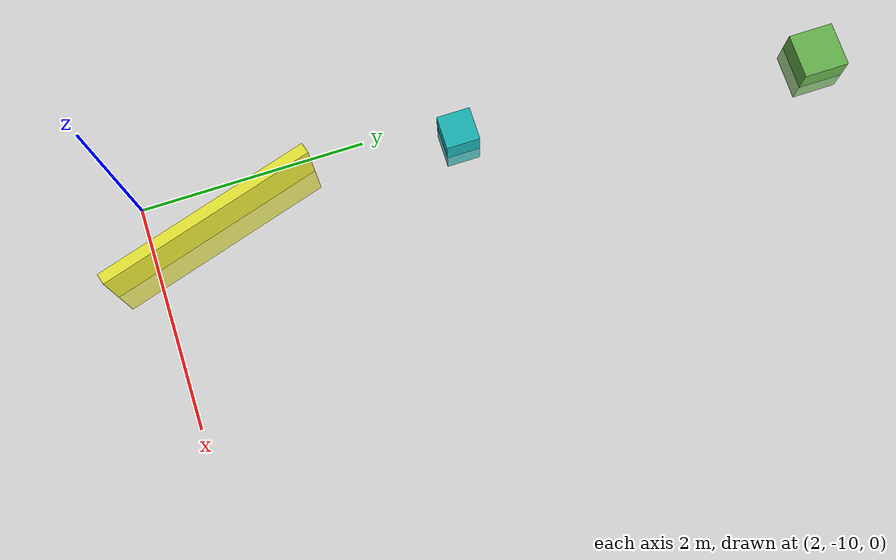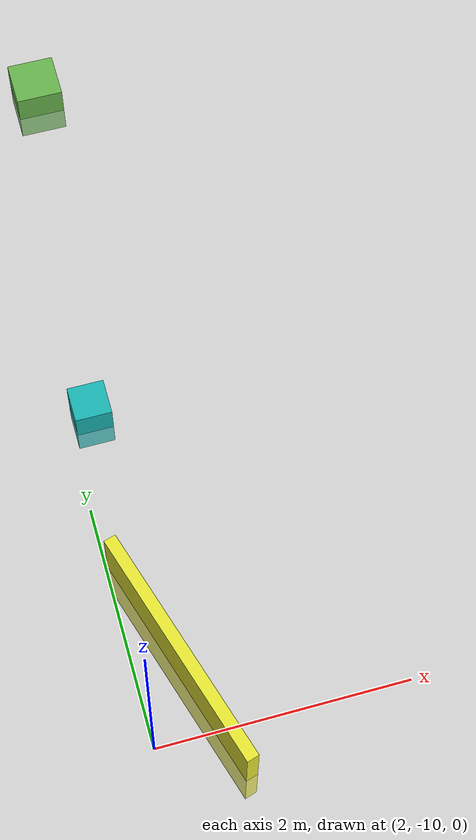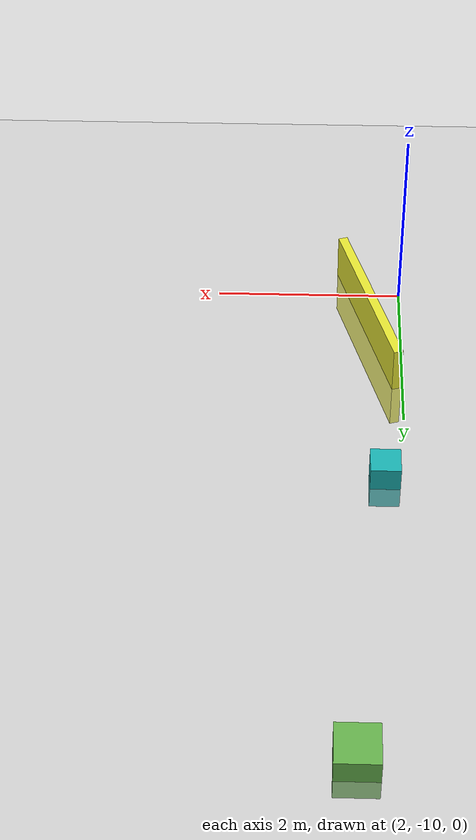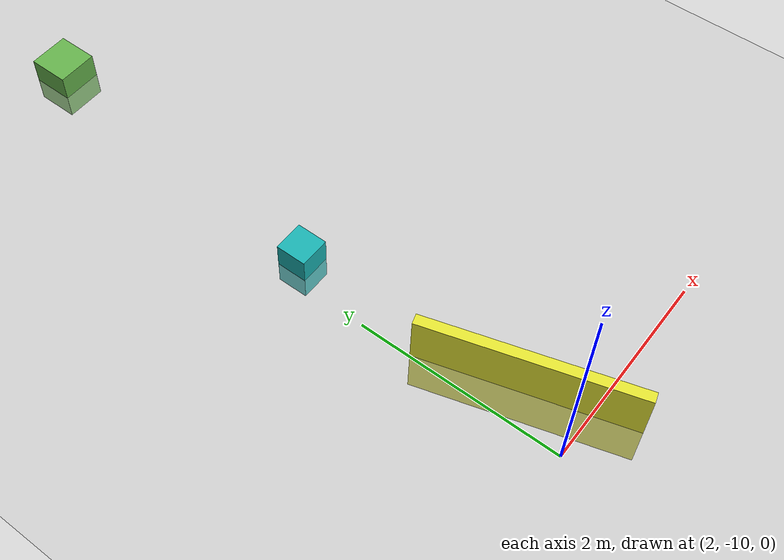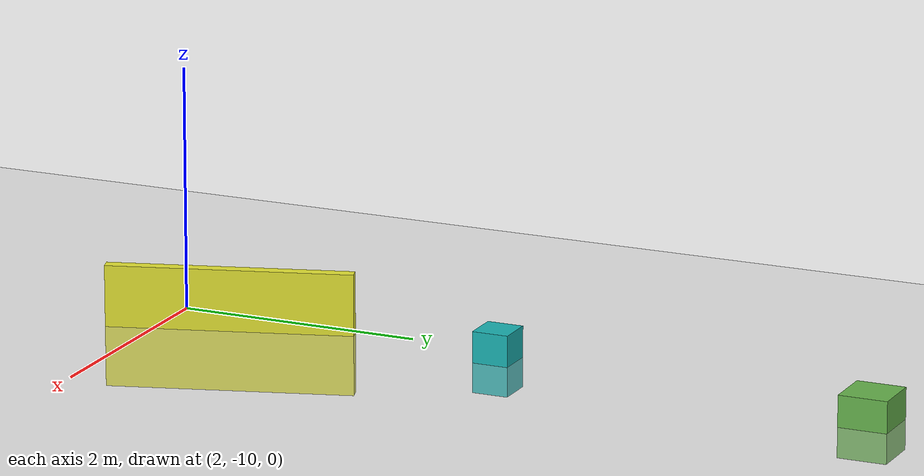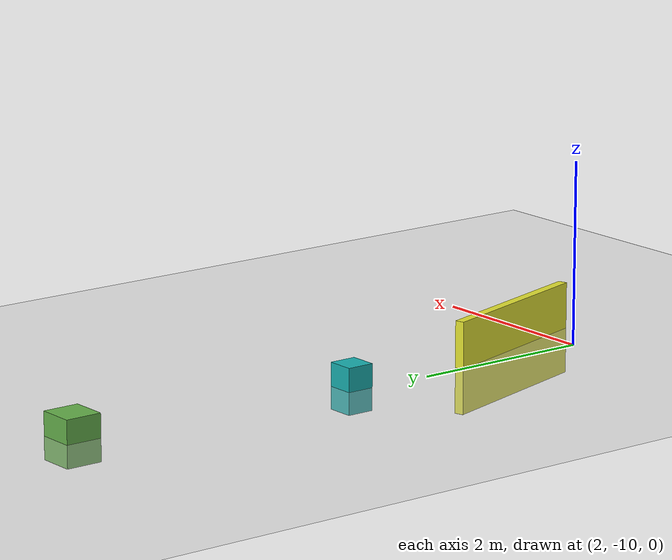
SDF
<sdf version="1.7">
 <world name="default">
  <model name="ground_plane">
   <static>1</static>
   <link name="link">
    <collision name="collision">
     <geometry><plane><normal>0 0 1</normal><size>100 100</size></plane></geometry>
     <surface><friction><ode><mu>100</mu><mu2>50</mu2></ode></friction></surface>
    </collision>
    <visual name="visual">
     <cast_shadows>0</cast_shadows>
     <geometry><plane><normal>0 0 1</normal><size>100 100</size></plane></geometry>
     <material>
      <script><uri>file://media/materials/scripts/gazebo.material</uri><name>Gazebo/Grey</name></script>
     </material>
    </visual>
   </link>
  </model>
  <model name="unit_box_0.3_heavy_clone_10">
   <link name="link">
    <inertial>
     <mass>100</mass>
     <inertia><ixx>1.5</ixx><ixy>0</ixy><ixz>0</ixz><iyy>1.5</iyy><iyz>0</iyz><izz>1.5</izz></inertia>
    </inertial>
    <visual name="visual">
     <geometry><box><size>0.3 0.3 0.5</size></box></geometry>
     <material>
      <script><name>Gazebo/Grey</name><uri>file://media/materials/scripts/gazebo.material</uri></script>
      <shader type="pixel"><normal_map>__default__</normal_map></shader>
      <ambient>0.1 0.7 0.7 1</ambient>
      <diffuse>0.7 0.7 0.7 1</diffuse>
      <specular>0.01 0.01 0.01 1</specular>
      <emissive>0 0 0 1</emissive>
     </material>
    </visual>
    <collision name="collision">
     <geometry><box><size>0.3 0.3 0.5</size></box></geometry>
     <surface>
      <friction>
       <ode><mu>1</mu><mu2>1</mu2><fdir1>0 0 0</fdir1><slip1>0</slip1><slip2>0</slip2></ode>
       <torsional>
        <coefficient>1</coefficient>
        <patch_radius>0</patch_radius>
        <surface_radius>0</surface_radius>
        <use_patch_radius>1</use_patch_radius>
        <ode><slip>0</slip></ode>
       </torsional>
      </friction>
      <bounce><restitution_coefficient>0</restitution_coefficient><threshold>1e+06</threshold></bounce>
      <contact>
       <collide_without_contact>0</collide_without_contact>
       <collide_without_contact_bitmask>1</collide_without_contact_bitmask>
       <collide_bitmask>1</collide_bitmask>
       <ode>
        <soft_cfm>0</soft_cfm>
        <soft_erp>0.2</soft_erp>
        <kp>1e+13</kp>
        <kd>1</kd>
        <max_vel>0.01</max_vel>
        <min_depth>0</min_depth>
       </ode>
       <bullet>
        <split_impulse>1</split_impulse>
        <split_impulse_penetration_threshold>-0.01</split_impulse_penetration_threshold>
        <soft_cfm>0</soft_cfm>
        <soft_erp>0.2</soft_erp>
        <kp>1e+13</kp>
        <kd>1</kd>
       </bullet>
      </contact>
     </surface>
    </collision>
   </link>
   <static>1</static>
   <pose>2.20551 -7.17477 0 0 -0 0</pose>
  </model>
  <model name="wooden_wall_2_heavy_clone">
   <link name="link_1">
    <inertial>
     <mass>100</mass>
     <inertia><ixx>8.41667</ixx><ixy>0</ixy><ixz>0</ixz><iyy>41.6667</iyy><iyz>0</iyz><izz>33.4167</izz></inertia>
    </inertial>
    <visual name="visual">
     <geometry><box><size>2 0.1 1</size></box></geometry>
     <material>
      <lighting>1</lighting>
      <script><uri>file://media/materials/scripts/gazebo.material</uri><name>Gazebo/Grey</name></script>
      <shader type="pixel"><normal_map>__default__</normal_map></shader>
      <ambient>0.9 0.9 0.2 1</ambient>
      <diffuse>0.7 0.7 0.7 1</diffuse>
      <specular>0.01 0.01 0.01 1</specular>
      <emissive>0 0 0 1</emissive>
     </material>
    </visual>
    <collision name="collision">
     <geometry><box><size>2 0.1 1</size></box></geometry>
     <surface>
      <friction>
       <ode><mu>1</mu><mu2>1</mu2><fdir1>0 0 0</fdir1><slip1>0</slip1><slip2>0</slip2></ode>
       <torsional>
        <coefficient>1</coefficient>
        <patch_radius>0</patch_radius>
        <surface_radius>0</surface_radius>
        <use_patch_radius>1</use_patch_radius>
        <ode><slip>0</slip></ode>
       </torsional>
      </friction>
      <bounce><restitution_coefficient>0</restitution_coefficient><threshold>1e+06</threshold></bounce>
      <contact>
       <collide_without_contact>0</collide_without_contact>
       <collide_without_contact_bitmask>1</collide_without_contact_bitmask>
       <collide_bitmask>1</collide_bitmask>
       <ode>
        <soft_cfm>0</soft_cfm>
        <soft_erp>0.2</soft_erp>
        <kp>1e+13</kp>
        <kd>1</kd>
        <max_vel>0.01</max_vel>
        <min_depth>0</min_depth>
       </ode>
       <bullet>
        <split_impulse>1</split_impulse>
        <split_impulse_penetration_threshold>-0.01</split_impulse_penetration_threshold>
        <soft_cfm>0</soft_cfm>
        <soft_erp>0.2</soft_erp>
        <kp>1e+13</kp>
        <kd>1</kd>
       </bullet>
      </contact>
     </surface>
    </collision>
   </link>
   <static>1</static>
   <allow_auto_disable>0</allow_auto_disable>
   <pose>2.34834 -9.44014 0 0 -0 1.86218</pose>
  </model>
  <model name="unit_box_0.4_heavy_clone_0">
   <link name="link">
    <inertial>
     <mass>100</mass>
     <inertia><ixx>1.5</ixx><ixy>0</ixy><ixz>0</ixz><iyy>1.5</iyy><iyz>0</iyz><izz>1.5</izz></inertia>
    </inertial>
    <visual name="visual">
     <geometry><box><size>0.4 0.4 0.5</size></box></geometry>
     <material>
      <script><name>Gazebo/Grey</name><uri>file://media/materials/scripts/gazebo.material</uri></script>
      <shader type="pixel"><normal_map>__default__</normal_map></shader>
      <ambient>0.4 0.7 0.3 1</ambient>
      <diffuse>0.7 0.7 0.7 1</diffuse>
      <specular>0.01 0.01 0.01 1</specular>
      <emissive>0 0 0 1</emissive>
     </material>
    </visual>
    <collision name="collision">
     <geometry><box><size>0.4 0.4 0.5</size></box></geometry>
     <surface>
      <friction>
       <ode><mu>1</mu><mu2>1</mu2><fdir1>0 0 0</fdir1><slip1>0</slip1><slip2>0</slip2></ode>
       <torsional>
        <coefficient>1</coefficient>
        <patch_radius>0</patch_radius>
        <surface_radius>0</surface_radius>
        <use_patch_radius>1</use_patch_radius>
        <ode><slip>0</slip></ode>
       </torsional>
      </friction>
      <bounce><restitution_coefficient>0</restitution_coefficient><threshold>1e+06</threshold></bounce>
      <contact>
       <collide_without_contact>0</collide_without_contact>
       <collide_without_contact_bitmask>1</collide_without_contact_bitmask>
       <collide_bitmask>1</collide_bitmask>
       <ode>
        <soft_cfm>0</soft_cfm>
        <soft_erp>0.2</soft_erp>
        <kp>1e+13</kp>
        <kd>1</kd>
        <max_vel>0.01</max_vel>
        <min_depth>0</min_depth>
       </ode>
       <bullet>
        <split_impulse>1</split_impulse>
        <split_impulse_penetration_threshold>-0.01</split_impulse_penetration_threshold>
        <soft_cfm>0</soft_cfm>
        <soft_erp>0.2</soft_erp>
        <kp>1e+13</kp>
        <kd>1</kd>
       </bullet>
      </contact>
     </surface>
    </collision>
   </link>
   <static>1</static>
   <pose>2.49286 -3.93536 0 0 -0 0</pose>
  </model>
 </world>
</sdf>
